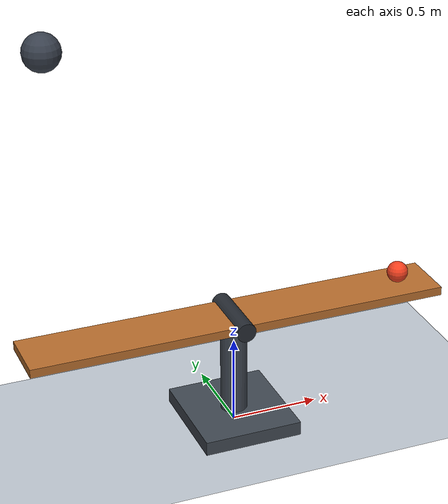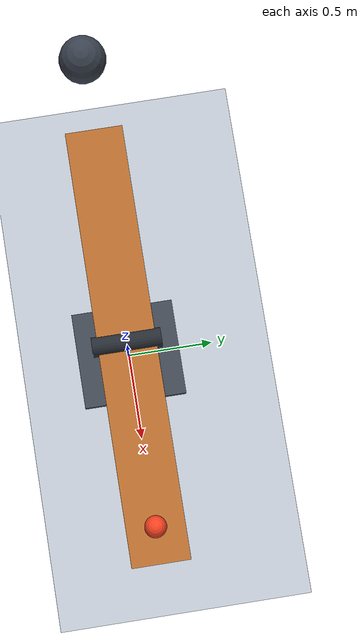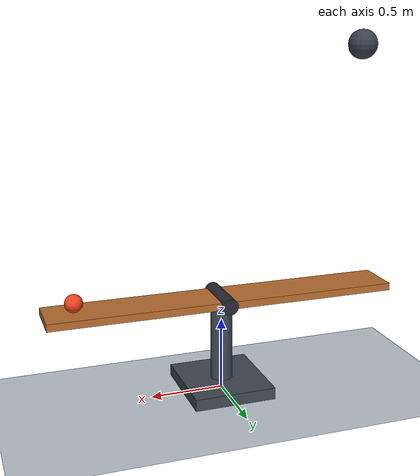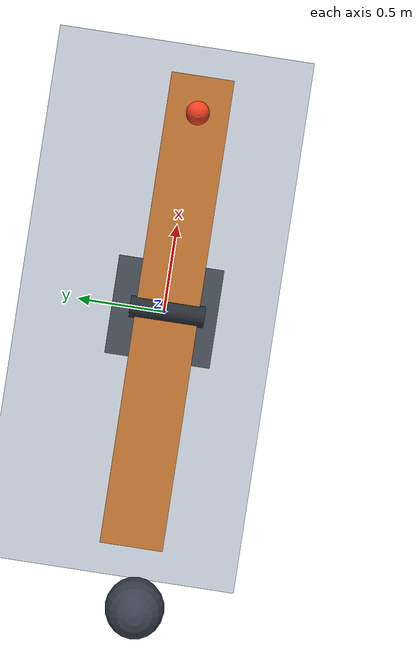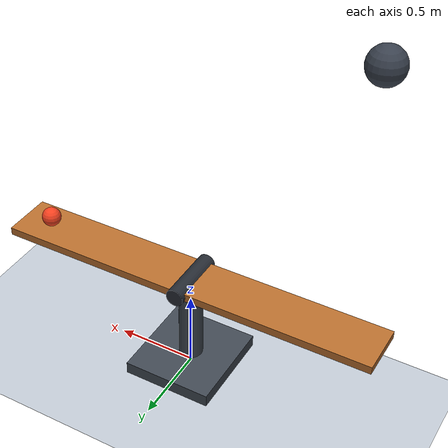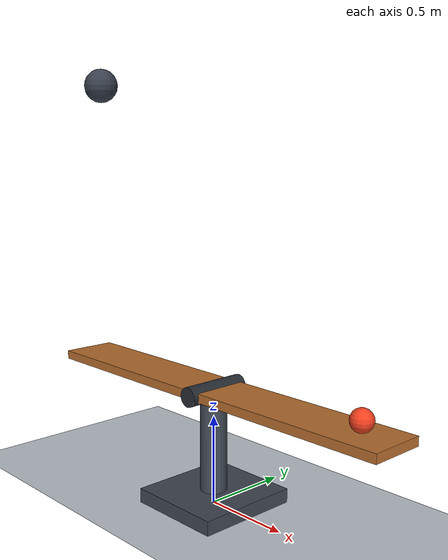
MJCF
<mujoco model="gravity_powered_seesaw">
  <compiler angle="radian" autolimits="true"/>
  <option timestep="0.002" gravity="0 0 -9.81" integrator="implicitfast" solver="Newton" iterations="100" tolerance="1e-10"/>
  <size njmax="200" nconmax="100"/>

  <visual>
    <global azimuth="125" elevation="-20"/>
  </visual>

  <worldbody>
    <light name="overhead_light" pos="0 -3 5" dir="0 0 -1" diffuse="0.8 0.8 0.8"/>
    <camera name="overview" pos="3 -5 2.8" xyaxes="0.857 0.514 0 -0.174 0.290 0.941"/>

    <geom name="floor" type="plane" pos="0 0 0" size="10 10 0.1" condim="6" friction="0.9 0.02 0.02" solref="0.006 1" solimp="0.95 0.99 0.001" rgba="0.75 0.78 0.82 1"/>

    <body name="support" pos="0 0 0">
      <geom name="support_base" type="box" pos="0 0 0.04" size="0.28 0.30 0.04" contype="0" conaffinity="0" rgba="0.25 0.28 0.32 1"/>
      <geom name="support_column" type="cylinder" pos="0 0 0.32" size="0.075 0.28" contype="0" conaffinity="0" rgba="0.25 0.28 0.32 1"/>
      <geom name="pivot_axle" type="cylinder" pos="0 0 0.65" euler="1.57079632679 0 0" size="0.055 0.19" contype="0" conaffinity="0" rgba="0.15 0.17 0.20 1"/>
    </body>

    <!-- The zero-angle stop holds the initially horizontal beam under the light ball. -->
    <body name="seesaw" pos="0 0 0.65">
      <joint name="seesaw_hinge" type="hinge" axis="0 1 0" limited="true" range="-0.50 0" damping="0.015" armature="0.003" solreflimit="0.004 1" solimplimit="0.98 0.999 0.001"/>
      <geom name="seesaw_beam" type="box" size="1.20 0.16 0.025" mass="0.25" condim="6" friction="0.8 0.01 0.01" solref="0.004 1" solimp="0.95 0.99 0.001" rgba="0.72 0.43 0.18 1"/>
    </body>

    <!-- The heavy ball falls 1.55 m before contacting the left end. -->
    <body name="weight" pos="-1 0 2.325">
      <freejoint name="weight_free"/>
      <geom name="weight_sphere" type="sphere" size="0.10" mass="1" condim="6" friction="0.8 0.01 0.01" solref="0.004 1" solimp="0.95 0.99 0.001" rgba="0.22 0.25 0.30 1"/>
    </body>

    <!-- This sphere starts at rest, touching the opposite end of the beam. -->
    <body name="ball" pos="1 0 0.735">
      <freejoint name="ball_free"/>
      <geom name="ball" type="sphere" size="0.06" mass="0.1" condim="6" friction="0.8 0.01 0.01" solref="0.004 1" solimp="0.95 0.99 0.001" rgba="0.95 0.25 0.12 1"/>
    </body>
  </worldbody>

  <keyframe>
    <key name="start" qpos="0 -1 0 2.325 1 0 0 0 1 0 0.735 1 0 0 0" qvel="0 0 0 0 0 0 0 0 0 0 0 0 0"/>
  </keyframe>
</mujoco>
